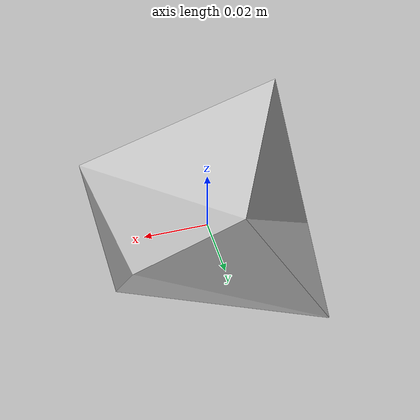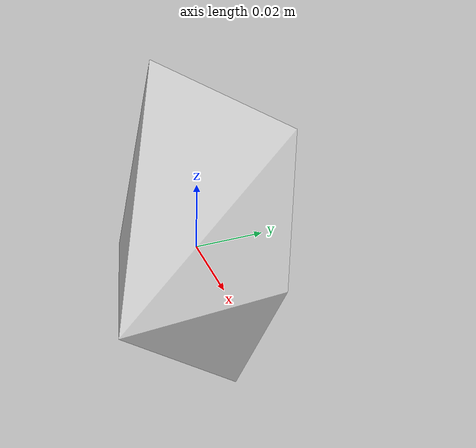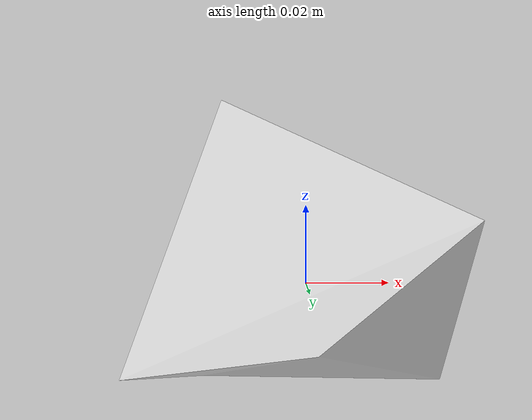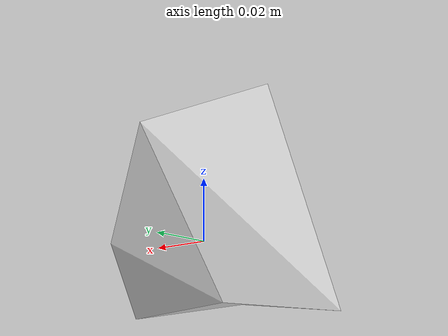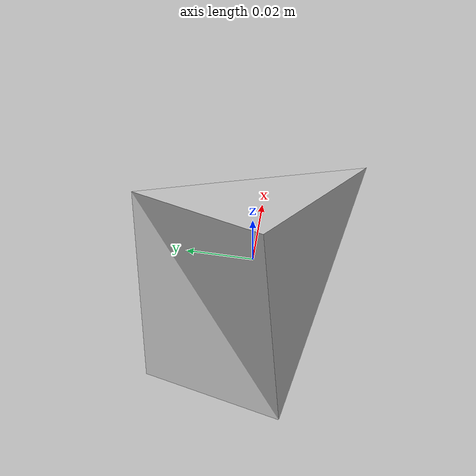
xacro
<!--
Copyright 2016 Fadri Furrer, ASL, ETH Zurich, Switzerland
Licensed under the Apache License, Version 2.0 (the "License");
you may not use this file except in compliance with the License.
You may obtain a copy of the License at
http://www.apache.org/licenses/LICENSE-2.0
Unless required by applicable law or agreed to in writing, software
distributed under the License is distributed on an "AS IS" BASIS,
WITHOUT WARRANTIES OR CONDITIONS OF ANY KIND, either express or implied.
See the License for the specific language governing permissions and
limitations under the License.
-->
<?xml version="1.0"?>

<robot name="4_poly" xmlns:xacro="http://ros.org/wiki/xacro">
  <xacro:property name="mesh_file" value="package://urdf_models/models/polygons/4_poly_3.stl" />
  <xacro:property name="mass" value="1.0" />
  <link name="base_link"></link>

  <joint name="base_joint" type="fixed">
    <origin xyz="0 0 0" rpy="-2.21 -1.47 0.215" />
    <parent link="base_link" />
    <child link="base_link_inertia" />
  </joint>

  <link name="base_link_inertia">
      <inertial>
        <mass value="${mass}" />  <!-- [kg] -->
        <origin xyz="0.022361e-01 -0.016301e-01  -0.007616e-01 " />
        <inertia ixx="0.003908e-02" ixy="-0.0" 			ixz="0."
                			    	iyy="0.003465e-02"  iyz="0.0"
                 										izz="0.004682e-02" />
      </inertial>

      <visual>
        <origin xyz="0 0 0" rpy="0 0 0" />
        <geometry>
          <mesh filename="${mesh_file}" scale="1 1 1" />
        </geometry>
		<material name="Gray">
	 	 <color rgba="0.8 0.8 0.8 1"/>
		</material>
      </visual>

      <collision>
        <origin xyz="0 0 0" rpy="0 0 0" />
        <geometry>
          <mesh filename="${mesh_file}" scale="1 1 1" />
        </geometry>
      </collision>
    </link>

    <gazebo reference="base_link">
      <mu1 value="1.2"/>
      <mu2 value="1.1"/>
      <kp  value="5000000.0" />
      <kd  value="1.0" />
      <fdir1 value="1 0 0"/>
      <collision>
	        <surface>
	          <bounce>
	            <restitution_coefficient> 0.1 </restitution_coefficient>
	            <threshold>0.</threshold>
	          </bounce>
		      <contact>
		          <ode>
		            <max_vel>0.1</max_vel>
		            <min_depth>0.001</min_depth>
		          </ode>
		      </contact>
	        </surface>
	   </collision>
      <material name="Gray">
	    <color rgba="0.8 0.8 0.8 1"/>
	  </material>
      <turnGravityOff>false</turnGravityOff>
    </gazebo>

</robot>
